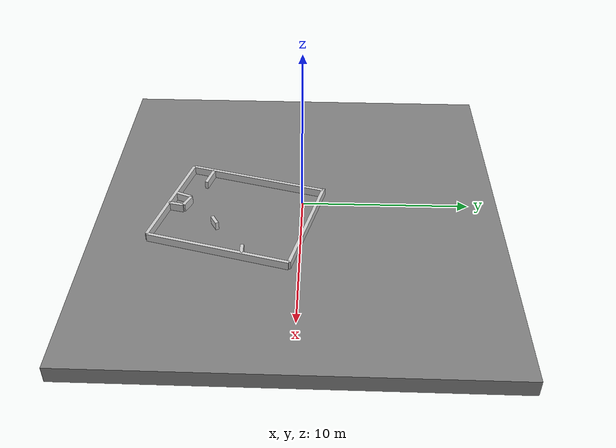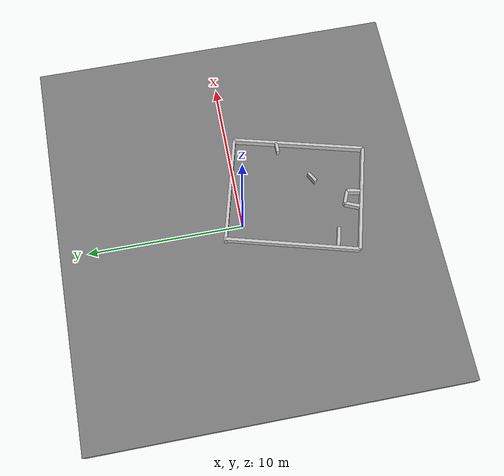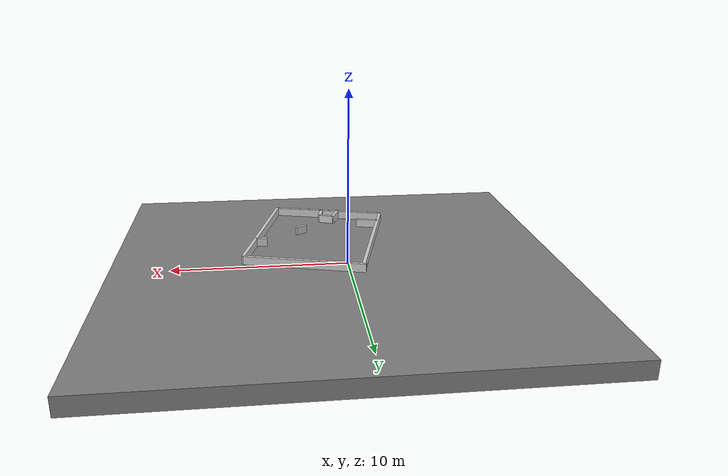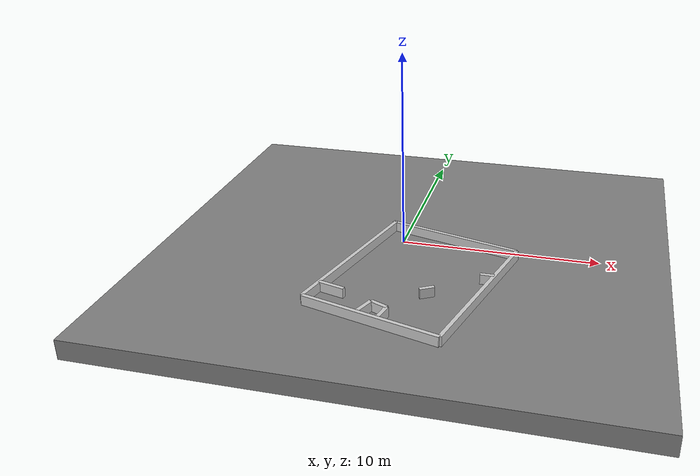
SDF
<?xml version="1.0" ?>
<sdf version="1.8">
  <world name="custom_world">
    <plugin filename="ignition-gazebo-physics-system" name="ignition::gazebo::systems::Physics"/>
    <plugin filename="ignition-gazebo-user-commands-system" name="ignition::gazebo::systems::UserCommands"/>
    <plugin filename="ignition-gazebo-scene-broadcaster-system" name="ignition::gazebo::systems::SceneBroadcaster"/>

    <light type="directional" name="sun"><pose>0 0 10 0 0 0</pose><cast_shadows>true</cast_shadows></light>

    <model name="ground_plane">
      <static>true</static>
      <pose>0.6000 -0.2000 -0.5 0 0 0</pose>
      <link name="link">
        <collision name="collision">
          <geometry><box><size>25.6 24.0 1.0</size></box></geometry>
        </collision>
        <visual name="visual">
          <geometry><box><size>25.6 24.0 1.0</size></box></geometry>
          <material>
            <ambient>0.8 0.8 0.8 1</ambient>
            <diffuse>0.5 0.5 0.5 1</diffuse>
            <specular>0.1 0.1 0.1 1</specular>
          </material>
        </visual>
      </link>
    </model>

    <model name="generated_walls">
      <static>true</static>

    <link name='wall_0'>
      <pose>2.5355 0.3604 0.2500 0 0 -0.2618</pose>
      <collision name='collision'><geometry><box><size>7.0595 0.2 0.5</size></box></geometry></collision>
      <visual name='visual'>
        <geometry><box><size>7.0595 0.2 0.5</size></box></geometry>
        <material><ambient>0.8 0.8 0.8 1</ambient><diffuse>0.8 0.8 0.8 1</diffuse></material>
      </visual>
    </link>
    <link name='wall_1'>
      <pose>4.8628 -4.6821 0.2500 0 0 1.3145</pose>
      <collision name='collision'><geometry><box><size>8.5367 0.2 0.5</size></box></geometry></collision>
      <visual name='visual'>
        <geometry><box><size>8.5367 0.2 0.5</size></box></geometry>
        <material><ambient>0.8 0.8 0.8 1</ambient><diffuse>0.8 0.8 0.8 1</diffuse></material>
      </visual>
    </link>
    <link name='wall_2'>
      <pose>0.4048 -7.9064 0.2500 0 0 2.8798</pose>
      <collision name='collision'><geometry><box><size>6.9898 0.2 0.5</size></box></geometry></collision>
      <visual name='visual'>
        <geometry><box><size>6.9898 0.2 0.5</size></box></geometry>
        <material><ambient>0.8 0.8 0.8 1</ambient><diffuse>0.8 0.8 0.8 1</diffuse></material>
      </visual>
    </link>
    <link name='wall_3'>
      <pose>-1.8523 -2.8827 0.2500 0 0 1.3056</pose>
      <collision name='collision'><geometry><box><size>8.5366 0.2 0.5</size></box></geometry></collision>
      <visual name='visual'>
        <geometry><box><size>8.5366 0.2 0.5</size></box></geometry>
        <material><ambient>0.8 0.8 0.8 1</ambient><diffuse>0.8 0.8 0.8 1</diffuse></material>
      </visual>
    </link>
    <link name='wall_4'>
      <pose>2.3821 -5.0737 0.2500 0 0 -2.6180</pose>
      <collision name='collision'><geometry><box><size>0.7215 0.2 0.5</size></box></geometry></collision>
      <visual name='visual'>
        <geometry><box><size>0.7215 0.2 0.5</size></box></geometry>
        <material><ambient>0.8 0.8 0.8 1</ambient><diffuse>0.8 0.8 0.8 1</diffuse></material>
      </visual>
    </link>
    <link name='wall_5'>
      <pose>4.8958 -3.2498 0.2500 0 0 3.1416</pose>
      <collision name='collision'><geometry><box><size>0.6848 0.2 0.5</size></box></geometry></collision>
      <visual name='visual'>
        <geometry><box><size>0.6848 0.2 0.5</size></box></geometry>
        <material><ambient>0.8 0.8 0.8 1</ambient><diffuse>0.8 0.8 0.8 1</diffuse></material>
      </visual>
    </link>
    <link name='wall_6'>
      <pose>-1.9579 -5.8502 0.2500 0 0 -0.2618</pose>
      <collision name='collision'><geometry><box><size>1.3518 0.2 0.5</size></box></geometry></collision>
      <visual name='visual'>
        <geometry><box><size>1.3518 0.2 0.5</size></box></geometry>
        <material><ambient>0.8 0.8 0.8 1</ambient><diffuse>0.8 0.8 0.8 1</diffuse></material>
      </visual>
    </link>
    <link name='wall_7'>
      <pose>0.0088 -7.2505 0.2500 0 0 1.1813</pose>
      <collision name='collision'><geometry><box><size>1.0708 0.2 0.5</size></box></geometry></collision>
      <visual name='visual'>
        <geometry><box><size>1.0708 0.2 0.5</size></box></geometry>
        <material><ambient>0.8 0.8 0.8 1</ambient><diffuse>0.8 0.8 0.8 1</diffuse></material>
      </visual>
    </link>
    <link name='wall_8'>
      <pose>0.6194 -6.9297 0.2500 0 0 -0.4049</pose>
      <collision name='collision'><geometry><box><size>0.8862 0.2 0.5</size></box></geometry></collision>
      <visual name='visual'>
        <geometry><box><size>0.8862 0.2 0.5</size></box></geometry>
        <material><ambient>0.8 0.8 0.8 1</ambient><diffuse>0.8 0.8 0.8 1</diffuse></material>
      </visual>
    </link>
    <link name='wall_9'>
      <pose>0.9302 -7.5628 0.2500 0 0 -1.7782</pose>
      <collision name='collision'><geometry><box><size>0.9371 0.2 0.5</size></box></geometry></collision>
      <visual name='visual'>
        <geometry><box><size>0.9371 0.2 0.5</size></box></geometry>
        <material><ambient>0.8 0.8 0.8 1</ambient><diffuse>0.8 0.8 0.8 1</diffuse></material>
      </visual>
    </link>
    </model>

  </world>
</sdf>
